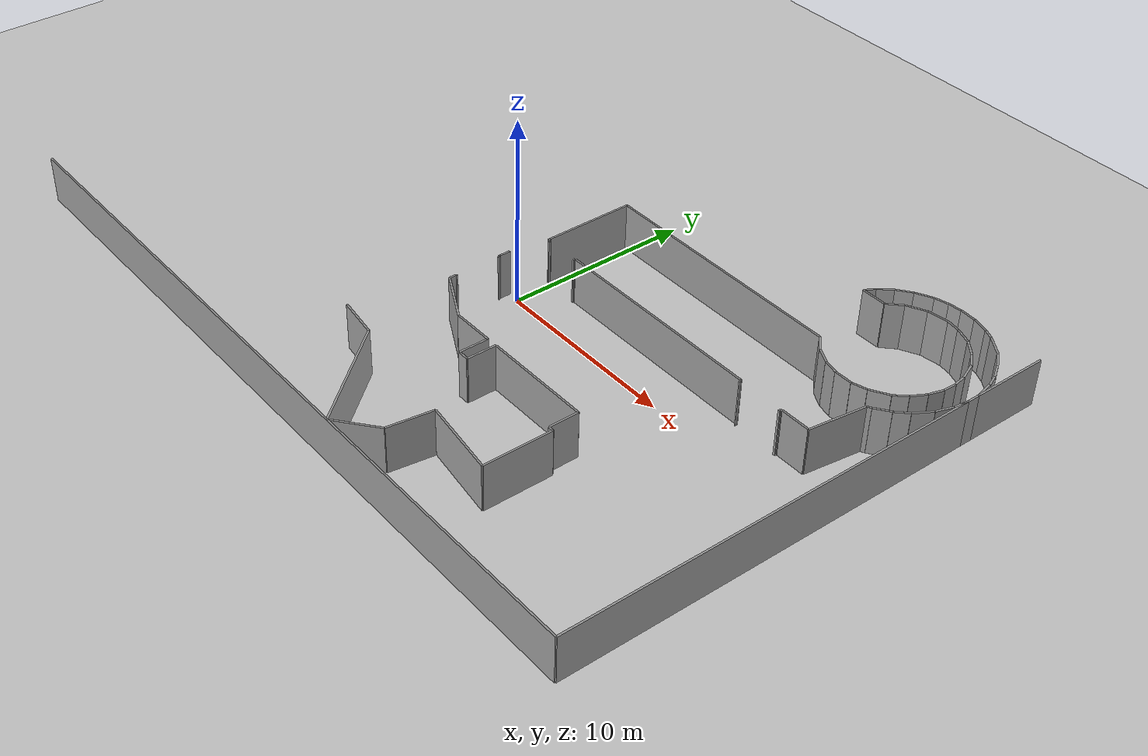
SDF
<sdf version="1.6">
 <world name="default">
  <model name="ground_plane">
   <static>1</static>
   <link name="link">
    <collision name="collision">
     <geometry><plane><normal>0 0 1</normal><size>100 100</size></plane></geometry>
     <surface><friction><ode><mu>100</mu><mu2>50</mu2></ode></friction></surface>
    </collision>
    <visual name="visual">
     <cast_shadows>0</cast_shadows>
     <geometry><plane><normal>0 0 1</normal><size>100 100</size></plane></geometry>
     <material>
      <script><uri>file://media/materials/scripts/gazebo.material</uri><name>Gazebo/Grey</name></script>
     </material>
    </visual>
   </link>
  </model>
  <model name="0510030941_A_40_1_105">
   <static>1</static>
   <link name="Wall_50">
    <collision name="Wall_50_Collision">
     <geometry><box><size>0.626453063662 0.1 2.5</size></box></geometry>
     <pose>0.313226531831 0 1.25 0 0 0</pose>
    </collision>
    <visual name="Wall_50_Visual">
     <pose>0.313226531831 0 1.25 0 0 0</pose>
     <geometry><box><size>0.626453063662 0.1 2.5</size></box></geometry>
     <material>
      <script><uri>file://media/materials/scripts/gazebo.material</uri><name>Gazebo/Grey</name></script>
      <ambient>1 1 1 1</ambient>
     </material>
    </visual>
    <pose>20.7602302034 -13.5093313684 0 0 0 -1.57079632679</pose>
   </link>
   <link name="Wall_51">
    <collision name="Wall_51_Collision">
     <geometry><box><size>0.0592024189143 0.1 2.5</size></box></geometry>
     <pose>0.0296012094571 0 1.25 0 0 0</pose>
    </collision>
    <visual name="Wall_51_Visual">
     <pose>0.0296012094571 0 1.25 0 0 0</pose>
     <geometry><box><size>0.0592024189143 0.1 2.5</size></box></geometry>
     <material>
      <script><uri>file://media/materials/scripts/gazebo.material</uri><name>Gazebo/Grey</name></script>
      <ambient>1 1 1 1</ambient>
     </material>
    </visual>
    <pose>20.7602302034 -14.1357844321 0 0 0 0.0</pose>
   </link>
   <link name="Wall_52">
    <collision name="Wall_52_Collision">
     <geometry><box><size>0.0915985923545 0.1 2.5</size></box></geometry>
     <pose>0.0457992961773 0 1.25 0 0 0</pose>
    </collision>
    <visual name="Wall_52_Visual">
     <pose>0.0457992961773 0 1.25 0 0 0</pose>
     <geometry><box><size>0.0915985923545 0.1 2.5</size></box></geometry>
     <material>
      <script><uri>file://media/materials/scripts/gazebo.material</uri><name>Gazebo/Grey</name></script>
      <ambient>1 1 1 1</ambient>
     </material>
    </visual>
    <pose>20.8194326223 -14.1357844321 0 0 0 -1.57079632679</pose>
   </link>
   <link name="Wall_53">
    <collision name="Wall_53_Collision">
     <geometry><box><size>0.0825784813182 0.1 2.5</size></box></geometry>
     <pose>0.0412892406591 0 1.25 0 0 0</pose>
    </collision>
    <visual name="Wall_53_Visual">
     <pose>0.0412892406591 0 1.25 0 0 0</pose>
     <geometry><box><size>0.0825784813182 0.1 2.5</size></box></geometry>
     <material>
      <script><uri>file://media/materials/scripts/gazebo.material</uri><name>Gazebo/Grey</name></script>
      <ambient>1 1 1 1</ambient>
     </material>
    </visual>
    <pose>20.8194326223 -16.6238105523 0 0 0 -1.57079632679</pose>
   </link>
   <link name="Wall_54">
    <collision name="Wall_54_Collision">
     <geometry><box><size>0.0377320137715 0.1 2.5</size></box></geometry>
     <pose>0.0188660068858 0 1.25 0 0 0</pose>
    </collision>
    <visual name="Wall_54_Visual">
     <pose>0.0188660068858 0 1.25 0 0 0</pose>
     <geometry><box><size>0.0377320137715 0.1 2.5</size></box></geometry>
     <material>
      <script><uri>file://media/materials/scripts/gazebo.material</uri><name>Gazebo/Grey</name></script>
      <ambient>1 1 1 1</ambient>
     </material>
    </visual>
    <pose>20.8194326223 -16.7063890336 0 0 0 3.14159265359</pose>
   </link>
   <link name="Wall_55">
    <collision name="Wall_55_Collision">
     <geometry><box><size>0.338698817222 0.1 2.5</size></box></geometry>
     <pose>0.169349408611 0 1.25 0 0 0</pose>
    </collision>
    <visual name="Wall_55_Visual">
     <pose>0.169349408611 0 1.25 0 0 0</pose>
     <geometry><box><size>0.338698817222 0.1 2.5</size></box></geometry>
     <material>
      <script><uri>file://media/materials/scripts/gazebo.material</uri><name>Gazebo/Grey</name></script>
      <ambient>1 1 1 1</ambient>
     </material>
    </visual>
    <pose>20.7817006085 -16.7063890336 0 0 0 -1.57079632679</pose>
   </link>
   <link name="Wall_56">
    <collision name="Wall_56_Collision">
     <geometry><box><size>2.94811483346 0.1 2.5</size></box></geometry>
     <pose>1.47405741673 0 1.25 0 0 0</pose>
    </collision>
    <visual name="Wall_56_Visual">
     <pose>1.47405741673 0 1.25 0 0 0</pose>
     <geometry><box><size>2.94811483346 0.1 2.5</size></box></geometry>
     <material>
      <script><uri>file://media/materials/scripts/gazebo.material</uri><name>Gazebo/Grey</name></script>
      <ambient>1 1 1 1</ambient>
     </material>
    </visual>
    <pose>20.7817006085 -17.0450878508 0 0 0 -0.485214517275</pose>
   </link>
   <link name="Wall_57">
    <collision name="Wall_57_Collision">
     <geometry><box><size>2.21349283084 0.1 2.5</size></box></geometry>
     <pose>1.10674641542 0 1.25 0 0 0</pose>
    </collision>
    <visual name="Wall_57_Visual">
     <pose>1.10674641542 0 1.25 0 0 0</pose>
     <geometry><box><size>2.21349283084 0.1 2.5</size></box></geometry>
     <material>
      <script><uri>file://media/materials/scripts/gazebo.material</uri><name>Gazebo/Grey</name></script>
      <ambient>1 1 1 1</ambient>
     </material>
    </visual>
    <pose>23.3895290486 -18.4200830867 0 0 0 0.0027549720807</pose>
   </link>
   <link name="Wall_58">
    <collision name="Wall_58_Collision">
     <geometry><box><size>1.56568800579 0.1 2.5</size></box></geometry>
     <pose>0.782844002897 0 1.25 0 0 0</pose>
    </collision>
    <visual name="Wall_58_Visual">
     <pose>0.782844002897 0 1.25 0 0 0</pose>
     <geometry><box><size>1.56568800579 0.1 2.5</size></box></geometry>
     <material>
      <script><uri>file://media/materials/scripts/gazebo.material</uri><name>Gazebo/Grey</name></script>
      <ambient>1 1 1 1</ambient>
     </material>
    </visual>
    <pose>25.6030134793 -18.4139849834 0 0 0 -1.57079632679</pose>
   </link>
   <link name="Wall_59">
    <collision name="Wall_59_Collision">
     <geometry><box><size>0.586561304994 0.1 2.5</size></box></geometry>
     <pose>0.293280652497 0 1.25 0 0 0</pose>
    </collision>
    <visual name="Wall_59_Visual">
     <pose>0.293280652497 0 1.25 0 0 0</pose>
     <geometry><box><size>0.586561304994 0.1 2.5</size></box></geometry>
     <material>
      <script><uri>file://media/materials/scripts/gazebo.material</uri><name>Gazebo/Grey</name></script>
      <ambient>1 1 1 1</ambient>
     </material>
    </visual>
    <pose>25.6030134793 -19.9796729892 0 0 0 0.0</pose>
   </link>
   <link name="Wall_60">
    <collision name="Wall_60_Collision">
     <geometry><box><size>1.57292950339 0.1 2.5</size></box></geometry>
     <pose>0.786464751693 0 1.25 0 0 0</pose>
    </collision>
    <visual name="Wall_60_Visual">
     <pose>0.786464751693 0 1.25 0 0 0</pose>
     <geometry><box><size>1.57292950339 0.1 2.5</size></box></geometry>
     <material>
      <script><uri>file://media/materials/scripts/gazebo.material</uri><name>Gazebo/Grey</name></script>
      <ambient>1 1 1 1</ambient>
     </material>
    </visual>
    <pose>26.1895747843 -19.9796729892 0 0 0 1.57079632679</pose>
   </link>
   <link name="Wall_61">
    <collision name="Wall_61_Collision">
     <geometry><box><size>5.82470494073 0.1 2.5</size></box></geometry>
     <pose>2.91235247037 0 1.25 0 0 0</pose>
    </collision>
    <visual name="Wall_61_Visual">
     <pose>2.91235247037 0 1.25 0 0 0</pose>
     <geometry><box><size>5.82470494073 0.1 2.5</size></box></geometry>
     <material>
      <script><uri>file://media/materials/scripts/gazebo.material</uri><name>Gazebo/Grey</name></script>
      <ambient>1 1 1 1</ambient>
     </material>
    </visual>
    <pose>26.1895747843 -18.4067434858 0 0 0 0.0</pose>
   </link>
   <link name="Wall_62">
    <collision name="Wall_62_Collision">
     <geometry><box><size>1.58652319185 0.1 2.5</size></box></geometry>
     <pose>0.793261595924 0 1.25 0 0 0</pose>
    </collision>
    <visual name="Wall_62_Visual">
     <pose>0.793261595924 0 1.25 0 0 0</pose>
     <geometry><box><size>1.58652319185 0.1 2.5</size></box></geometry>
     <material>
      <script><uri>file://media/materials/scripts/gazebo.material</uri><name>Gazebo/Grey</name></script>
      <ambient>1 1 1 1</ambient>
     </material>
    </visual>
    <pose>32.0142797251 -18.4067434858 0 0 0 -1.57079632679</pose>
   </link>
   <link name="Wall_63">
    <collision name="Wall_63_Collision">
     <geometry><box><size>0.26171026387 0.1 2.5</size></box></geometry>
     <pose>0.130855131935 0 1.25 0 0 0</pose>
    </collision>
    <visual name="Wall_63_Visual">
     <pose>0.130855131935 0 1.25 0 0 0</pose>
     <geometry><box><size>0.26171026387 0.1 2.5</size></box></geometry>
     <material>
      <script><uri>file://media/materials/scripts/gazebo.material</uri><name>Gazebo/Grey</name></script>
      <ambient>1 1 1 1</ambient>
     </material>
    </visual>
    <pose>32.0142797251 -19.9932666777 0 0 0 0.0</pose>
   </link>
   <link name="Wall_64">
    <collision name="Wall_64_Collision">
     <geometry><box><size>3.68261913534 0.1 2.5</size></box></geometry>
     <pose>1.84130956767 0 1.25 0 0 0</pose>
    </collision>
    <visual name="Wall_64_Visual">
     <pose>1.84130956767 0 1.25 0 0 0</pose>
     <geometry><box><size>3.68261913534 0.1 2.5</size></box></geometry>
     <material>
      <script><uri>file://media/materials/scripts/gazebo.material</uri><name>Gazebo/Grey</name></script>
      <ambient>1 1 1 1</ambient>
     </material>
    </visual>
    <pose>32.2759899889 -19.9932666777 0 0 0 -1.57079632679</pose>
   </link>
   <link name="Wall_65">
    <collision name="Wall_65_Collision">
     <geometry><box><size>4.09814743715 0.1 2.5</size></box></geometry>
     <pose>2.04907371857 0 1.25 0 0 0</pose>
    </collision>
    <visual name="Wall_65_Visual">
     <pose>2.04907371857 0 1.25 0 0 0</pose>
     <geometry><box><size>4.09814743715 0.1 2.5</size></box></geometry>
     <material>
      <script><uri>file://media/materials/scripts/gazebo.material</uri><name>Gazebo/Grey</name></script>
      <ambient>1 1 1 1</ambient>
     </material>
    </visual>
    <pose>32.2759899889 -23.675885813 0 0 0 3.00792465708</pose>
   </link>
   <link name="Wall_66">
    <collision name="Wall_66_Collision">
     <geometry><box><size>2.41794761321 0.1 2.5</size></box></geometry>
     <pose>1.20897380661 0 1.25 0 0 0</pose>
    </collision>
    <visual name="Wall_66_Visual">
     <pose>1.20897380661 0 1.25 0 0 0</pose>
     <geometry><box><size>2.41794761321 0.1 2.5</size></box></geometry>
     <material>
      <script><uri>file://media/materials/scripts/gazebo.material</uri><name>Gazebo/Grey</name></script>
      <ambient>1 1 1 1</ambient>
     </material>
    </visual>
    <pose>28.2143991463 -23.129724442 0 0 0 -1.71048650278</pose>
   </link>
   <link name="Wall_67">
    <collision name="Wall_67_Collision">
     <geometry><box><size>2.52159958981 0.1 2.5</size></box></geometry>
     <pose>1.26079979491 0 1.25 0 0 0</pose>
    </collision>
    <visual name="Wall_67_Visual">
     <pose>1.26079979491 0 1.25 0 0 0</pose>
     <geometry><box><size>2.52159958981 0.1 2.5</size></box></geometry>
     <material>
      <script><uri>file://media/materials/scripts/gazebo.material</uri><name>Gazebo/Grey</name></script>
      <ambient>1 1 1 1</ambient>
     </material>
    </visual>
    <pose>27.8777330301 -25.5241192687 0 0 0 -2.44340965199</pose>
   </link>
   <link name="Wall_68">
    <collision name="Wall_68_Collision">
     <geometry><box><size>6.33365837987 0.1 2.5</size></box></geometry>
     <pose>3.16682918993 0 1.25 0 0 0</pose>
    </collision>
    <visual name="Wall_68_Visual">
     <pose>3.16682918993 0 1.25 0 0 0</pose>
     <geometry><box><size>6.33365837987 0.1 2.5</size></box></geometry>
     <material>
      <script><uri>file://media/materials/scripts/gazebo.material</uri><name>Gazebo/Grey</name></script>
      <ambient>1 1 1 1</ambient>
     </material>
    </visual>
    <pose>25.9461588302 -27.1450713351 0 0 0 2.26956673565</pose>
   </link>
   <link name="Wall_69">
    <collision name="Wall_69_Collision">
     <geometry><box><size>2.24384510144 0.1 2.5</size></box></geometry>
     <pose>1.12192255072 0 1.25 0 0 0</pose>
    </collision>
    <visual name="Wall_69_Visual">
     <pose>1.12192255072 0 1.25 0 0 0</pose>
     <geometry><box><size>2.24384510144 0.1 2.5</size></box></geometry>
     <material>
      <script><uri>file://media/materials/scripts/gazebo.material</uri><name>Gazebo/Grey</name></script>
      <ambient>1 1 1 1</ambient>
     </material>
    </visual>
    <pose>21.8718636058 -22.2958088245 0 0 0 3.00774282889</pose>
   </link>
   <link name="Wall_95">
    <collision name="Wall_95_Collision">
     <geometry><box><size>4.89233036474 0.1 2.5</size></box></geometry>
     <pose>2.44616518237 0 1.25 0 0 0</pose>
    </collision>
    <visual name="Wall_95_Visual">
     <pose>2.44616518237 0 1.25 0 0 0</pose>
     <geometry><box><size>4.89233036474 0.1 2.5</size></box></geometry>
     <material>
      <script><uri>file://media/materials/scripts/gazebo.material</uri><name>Gazebo/Grey</name></script>
      <ambient>1 1 1 1</ambient>
     </material>
    </visual>
    <pose>21.1092195698 -11.4095511542 0 0 0 1.57079632679</pose>
   </link>
   <link name="Wall_96">
    <collision name="Wall_96_Collision">
     <geometry><box><size>13.3570058313 0.1 2.5</size></box></geometry>
     <pose>6.67850291566 0 1.25 0 0 0</pose>
    </collision>
    <visual name="Wall_96_Visual">
     <pose>6.67850291566 0 1.25 0 0 0</pose>
     <geometry><box><size>13.3570058313 0.1 2.5</size></box></geometry>
     <material>
      <script><uri>file://media/materials/scripts/gazebo.material</uri><name>Gazebo/Grey</name></script>
      <ambient>1 1 1 1</ambient>
     </material>
    </visual>
    <pose>21.1092195698 -6.51722078945 0 0 0 0.0</pose>
   </link>
   <link name="Wall_97">
    <collision name="Wall_97_Collision">
     <geometry><box><size>0.912531288236 0.1 2.5</size></box></geometry>
     <pose>0.456265644118 0 1.25 0 0 0</pose>
    </collision>
    <visual name="Wall_97_Visual">
     <pose>0.456265644118 0 1.25 0 0 0</pose>
     <geometry><box><size>0.912531288236 0.1 2.5</size></box></geometry>
     <material>
      <script><uri>file://media/materials/scripts/gazebo.material</uri><name>Gazebo/Grey</name></script>
      <ambient>1 1 1 1</ambient>
     </material>
    </visual>
    <pose>34.4662254011 -6.51722078945 0 0 0 -0.783232386118</pose>
   </link>
   <link name="Wall_98">
    <collision name="Wall_98_Collision">
     <geometry><box><size>0.893236226327 0.1 2.5</size></box></geometry>
     <pose>0.446618113164 0 1.25 0 0 0</pose>
    </collision>
    <visual name="Wall_98_Visual">
     <pose>0.446618113164 0 1.25 0 0 0</pose>
     <geometry><box><size>0.893236226327 0.1 2.5</size></box></geometry>
     <material>
      <script><uri>file://media/materials/scripts/gazebo.material</uri><name>Gazebo/Grey</name></script>
      <ambient>1 1 1 1</ambient>
     </material>
    </visual>
    <pose>35.1128784318 -7.1610788561 0 0 0 -0.481967335478</pose>
   </link>
   <link name="Wall_99">
    <collision name="Wall_99_Collision">
     <geometry><box><size>0.770025981696 0.1 2.5</size></box></geometry>
     <pose>0.385012990848 0 1.25 0 0 0</pose>
    </collision>
    <visual name="Wall_99_Visual">
     <pose>0.385012990848 0 1.25 0 0 0</pose>
     <geometry><box><size>0.770025981696 0.1 2.5</size></box></geometry>
     <material>
      <script><uri>file://media/materials/scripts/gazebo.material</uri><name>Gazebo/Grey</name></script>
      <ambient>1 1 1 1</ambient>
     </material>
    </visual>
    <pose>35.9043614143 -7.57511465705 0 0 0 -0.238176046972</pose>
   </link>
   <link name="Wall_100">
    <collision name="Wall_100_Collision">
     <geometry><box><size>0.943935563376 0.1 2.5</size></box></geometry>
     <pose>0.471967781688 0 1.25 0 0 0</pose>
    </collision>
    <visual name="Wall_100_Visual">
     <pose>0.471967781688 0 1.25 0 0 0</pose>
     <geometry><box><size>0.943935563376 0.1 2.5</size></box></geometry>
     <material>
      <script><uri>file://media/materials/scripts/gazebo.material</uri><name>Gazebo/Grey</name></script>
      <ambient>1 1 1 1</ambient>
     </material>
    </visual>
    <pose>36.6526494988 -7.75678731595 0 0 0 0.0</pose>
   </link>
   <link name="Wall_101">
    <collision name="Wall_101_Collision">
     <geometry><box><size>0.788757236741 0.1 2.5</size></box></geometry>
     <pose>0.394378618371 0 1.25 0 0 0</pose>
    </collision>
    <visual name="Wall_101_Visual">
     <pose>0.394378618371 0 1.25 0 0 0</pose>
     <geometry><box><size>0.788757236741 0.1 2.5</size></box></geometry>
     <material>
      <script><uri>file://media/materials/scripts/gazebo.material</uri><name>Gazebo/Grey</name></script>
      <ambient>1 1 1 1</ambient>
     </material>
    </visual>
    <pose>37.5965850622 -7.75678731595 0 0 0 0.289605487563</pose>
   </link>
   <link name="Wall_102">
    <collision name="Wall_102_Collision">
     <geometry><box><size>1.04555607586 0.1 2.5</size></box></geometry>
     <pose>0.522778037929 0 1.25 0 0 0</pose>
    </collision>
    <visual name="Wall_102_Visual">
     <pose>0.522778037929 0 1.25 0 0 0</pose>
     <geometry><box><size>1.04555607586 0.1 2.5</size></box></geometry>
     <material>
      <script><uri>file://media/materials/scripts/gazebo.material</uri><name>Gazebo/Grey</name></script>
      <ambient>1 1 1 1</ambient>
     </material>
    </visual>
    <pose>38.3524957758 -7.53153862767 0 0 0 0.542086582164</pose>
   </link>
   <link name="Wall_103">
    <collision name="Wall_103_Collision">
     <geometry><box><size>0.750552208039 0.1 2.5</size></box></geometry>
     <pose>0.37527610402 0 1.25 0 0 0</pose>
    </collision>
    <visual name="Wall_103_Visual">
     <pose>0.37527610402 0 1.25 0 0 0</pose>
     <geometry><box><size>0.750552208039 0.1 2.5</size></box></geometry>
     <material>
      <script><uri>file://media/materials/scripts/gazebo.material</uri><name>Gazebo/Grey</name></script>
      <ambient>1 1 1 1</ambient>
     </material>
    </visual>
    <pose>39.2481546886 -6.99211057894 0 0 0 0.831614929538</pose>
   </link>
   <link name="Wall_104">
    <collision name="Wall_104_Collision">
     <geometry><box><size>0.831711356591 0.1 2.5</size></box></geometry>
     <pose>0.415855678295 0 1.25 0 0 0</pose>
    </collision>
    <visual name="Wall_104_Visual">
     <pose>0.415855678295 0 1.25 0 0 0</pose>
     <geometry><box><size>0.831711356591 0.1 2.5</size></box></geometry>
     <material>
      <script><uri>file://media/materials/scripts/gazebo.material</uri><name>Gazebo/Grey</name></script>
      <ambient>1 1 1 1</ambient>
     </material>
    </visual>
    <pose>39.7537890819 -6.43743727212 0 0 0 1.06881639612</pose>
   </link>
   <link name="Wall_105">
    <collision name="Wall_105_Collision">
     <geometry><box><size>0.802053086045 0.1 2.5</size></box></geometry>
     <pose>0.401026543023 0 1.25 0 0 0</pose>
    </collision>
    <visual name="Wall_105_Visual">
     <pose>0.401026543023 0 1.25 0 0 0</pose>
     <geometry><box><size>0.802053086045 0.1 2.5</size></box></geometry>
     <material>
      <script><uri>file://media/materials/scripts/gazebo.material</uri><name>Gazebo/Grey</name></script>
      <ambient>1 1 1 1</ambient>
     </material>
    </visual>
    <pose>40.1539771067 -5.70833280398 0 0 0 1.28662206174</pose>
   </link>
   <link name="Wall_106">
    <collision name="Wall_106_Collision">
     <geometry><box><size>0.683201974276 0.1 2.5</size></box></geometry>
     <pose>0.341600987138 0 1.25 0 0 0</pose>
    </collision>
    <visual name="Wall_106_Visual">
     <pose>0.341600987138 0 1.25 0 0 0</pose>
     <geometry><box><size>0.683201974276 0.1 2.5</size></box></geometry>
     <material>
      <script><uri>file://media/materials/scripts/gazebo.material</uri><name>Gazebo/Grey</name></script>
      <ambient>1 1 1 1</ambient>
     </material>
    </visual>
    <pose>40.3788446635 -4.93844727046 0 0 0 1.53917895955</pose>
   </link>
   <link name="Wall_107">
    <collision name="Wall_107_Collision">
     <geometry><box><size>0.663721745365 0.1 2.5</size></box></geometry>
     <pose>0.331860872683 0 1.25 0 0 0</pose>
    </collision>
    <visual name="Wall_107_Visual">
     <pose>0.331860872683 0 1.25 0 0 0</pose>
     <geometry><box><size>0.663721745365 0.1 2.5</size></box></geometry>
     <material>
      <script><uri>file://media/materials/scripts/gazebo.material</uri><name>Gazebo/Grey</name></script>
      <ambient>1 1 1 1</ambient>
     </material>
    </visual>
    <pose>40.4004421125 -4.25558675187 0 0 0 1.73034370336</pose>
   </link>
   <link name="Wall_108">
    <collision name="Wall_108_Collision">
     <geometry><box><size>0.980344390581 0.1 2.5</size></box></geometry>
     <pose>0.490172195291 0 1.25 0 0 0</pose>
    </collision>
    <visual name="Wall_108_Visual">
     <pose>0.490172195291 0 1.25 0 0 0</pose>
     <geometry><box><size>0.980344390581 0.1 2.5</size></box></geometry>
     <material>
      <script><uri>file://media/materials/scripts/gazebo.material</uri><name>Gazebo/Grey</name></script>
      <ambient>1 1 1 1</ambient>
     </material>
    </visual>
    <pose>40.294995744 -3.60029474166 0 0 0 1.95327598976</pose>
   </link>
   <link name="Wall_109">
    <collision name="Wall_109_Collision">
     <geometry><box><size>0.766131902726 0.1 2.5</size></box></geometry>
     <pose>0.383065951363 0 1.25 0 0 0</pose>
    </collision>
    <visual name="Wall_109_Visual">
     <pose>0.383065951363 0 1.25 0 0 0</pose>
     <geometry><box><size>0.766131902726 0.1 2.5</size></box></geometry>
     <material>
      <script><uri>file://media/materials/scripts/gazebo.material</uri><name>Gazebo/Grey</name></script>
      <ambient>1 1 1 1</ambient>
     </material>
    </visual>
    <pose>39.9291095499 -2.6907880528 0 0 0 2.28060969143</pose>
   </link>
   <link name="Wall_110">
    <collision name="Wall_110_Collision">
     <geometry><box><size>0.930459378253 0.1 2.5</size></box></geometry>
     <pose>0.465229689126 0 1.25 0 0 0</pose>
    </collision>
    <visual name="Wall_110_Visual">
     <pose>0.465229689126 0 1.25 0 0 0</pose>
     <geometry><box><size>0.930459378253 0.1 2.5</size></box></geometry>
     <material>
      <script><uri>file://media/materials/scripts/gazebo.material</uri><name>Gazebo/Grey</name></script>
      <ambient>1 1 1 1</ambient>
     </material>
    </visual>
    <pose>39.4298273475 -2.10968963195 0 0 0 2.46706494917</pose>
   </link>
   <link name="Wall_111">
    <collision name="Wall_111_Collision">
     <geometry><box><size>0.915048879344 0.1 2.5</size></box></geometry>
     <pose>0.457524439672 0 1.25 0 0 0</pose>
    </collision>
    <visual name="Wall_111_Visual">
     <pose>0.457524439672 0 1.25 0 0 0</pose>
     <geometry><box><size>0.915048879344 0.1 2.5</size></box></geometry>
     <material>
      <script><uri>file://media/materials/scripts/gazebo.material</uri><name>Gazebo/Grey</name></script>
      <ambient>1 1 1 1</ambient>
     </material>
    </visual>
    <pose>38.7031367119 -1.52859121111 0 0 0 2.78919194494</pose>
   </link>
   <link name="Wall_112">
    <collision name="Wall_112_Collision">
     <geometry><box><size>0.69063963807 0.1 2.5</size></box></geometry>
     <pose>0.345319819035 0 1.25 0 0 0</pose>
    </collision>
    <visual name="Wall_112_Visual">
     <pose>0.345319819035 0 1.25 0 0 0</pose>
     <geometry><box><size>0.69063963807 0.1 2.5</size></box></geometry>
     <material>
      <script><uri>file://media/materials/scripts/gazebo.material</uri><name>Gazebo/Grey</name></script>
      <ambient>1 1 1 1</ambient>
     </material>
    </visual>
    <pose>37.8443205061 -1.21276028102 0 0 0 2.98533505018</pose>
   </link>
   <link name="Wall_113">
    <collision name="Wall_113_Collision">
     <geometry><box><size>1.10220111599 0.1 2.5</size></box></geometry>
     <pose>0.551100557997 0 1.25 0 0 0</pose>
    </collision>
    <visual name="Wall_113_Visual">
     <pose>0.551100557997 0 1.25 0 0 0</pose>
     <geometry><box><size>1.10220111599 0.1 2.5</size></box></geometry>
     <material>
      <script><uri>file://media/materials/scripts/gazebo.material</uri><name>Gazebo/Grey</name></script>
      <ambient>1 1 1 1</ambient>
     </material>
    </visual>
    <pose>37.1620952066 -1.10528121149 0 0 0 -3.00934579498</pose>
   </link>
   <link name="Wall_114">
    <collision name="Wall_114_Collision">
     <geometry><box><size>1.07599460217 0.1 2.5</size></box></geometry>
     <pose>0.537997301083 0 1.25 0 0 0</pose>
    </collision>
    <visual name="Wall_114_Visual">
     <pose>0.537997301083 0 1.25 0 0 0</pose>
     <geometry><box><size>1.07599460217 0.1 2.5</size></box></geometry>
     <material>
      <script><uri>file://media/materials/scripts/gazebo.material</uri><name>Gazebo/Grey</name></script>
      <ambient>1 1 1 1</ambient>
     </material>
    </visual>
    <pose>36.0695183769 -1.25061933861 0 0 0 -2.66611690108</pose>
   </link>
   <link name="Wall_115">
    <collision name="Wall_115_Collision">
     <geometry><box><size>0.921782007573 0.1 2.5</size></box></geometry>
     <pose>0.460891003787 0 1.25 0 0 0</pose>
    </collision>
    <visual name="Wall_115_Visual">
     <pose>0.460891003787 0 1.25 0 0 0</pose>
     <geometry><box><size>0.921782007573 0.1 2.5</size></box></geometry>
     <material>
      <script><uri>file://media/materials/scripts/gazebo.material</uri><name>Gazebo/Grey</name></script>
      <ambient>1 1 1 1</ambient>
     </material>
    </visual>
    <pose>35.1128784318 -1.74316821872 0 0 0 -2.3560970338</pose>
   </link>
   <link name="Wall_116">
    <collision name="Wall_116_Collision">
     <geometry><box><size>1.32506701561 0.1 2.5</size></box></geometry>
     <pose>0.662533507807 0 1.25 0 0 0</pose>
    </collision>
    <visual name="Wall_116_Visual">
     <pose>0.662533507807 0 1.25 0 0 0</pose>
     <geometry><box><size>1.32506701561 0.1 2.5</size></box></geometry>
     <material>
      <script><uri>file://media/materials/scripts/gazebo.material</uri><name>Gazebo/Grey</name></script>
      <ambient>1 1 1 1</ambient>
     </material>
    </visual>
    <pose>34.4611436484 -2.39503004586 0 0 0 3.14159265359</pose>
   </link>
   <link name="Wall_117">
    <collision name="Wall_117_Collision">
     <geometry><box><size>0.60228552909 0.1 2.5</size></box></geometry>
     <pose>0.301142764545 0 1.25 0 0 0</pose>
    </collision>
    <visual name="Wall_117_Visual">
     <pose>0.301142764545 0 1.25 0 0 0</pose>
     <geometry><box><size>0.60228552909 0.1 2.5</size></box></geometry>
     <material>
      <script><uri>file://media/materials/scripts/gazebo.material</uri><name>Gazebo/Grey</name></script>
      <ambient>1 1 1 1</ambient>
     </material>
    </visual>
    <pose>33.1360766328 -2.39503004586 0 0 0 1.06666857725</pose>
   </link>
   <link name="Wall_118">
    <collision name="Wall_118_Collision">
     <geometry><box><size>0.859635548186 0.1 2.5</size></box></geometry>
     <pose>0.429817774093 0 1.25 0 0 0</pose>
    </collision>
    <visual name="Wall_118_Visual">
     <pose>0.429817774093 0 1.25 0 0 0</pose>
     <geometry><box><size>0.859635548186 0.1 2.5</size></box></geometry>
     <material>
      <script><uri>file://media/materials/scripts/gazebo.material</uri><name>Gazebo/Grey</name></script>
      <ambient>1 1 1 1</ambient>
     </material>
    </visual>
    <pose>33.4270069747 -1.86767115978 0 0 0 0.855052737126</pose>
   </link>
   <link name="Wall_119">
    <collision name="Wall_119_Collision">
     <geometry><box><size>0.883201053007 0.1 2.5</size></box></geometry>
     <pose>0.441600526504 0 1.25 0 0 0</pose>
    </collision>
    <visual name="Wall_119_Visual">
     <pose>0.441600526504 0 1.25 0 0 0</pose>
     <geometry><box><size>0.883201053007 0.1 2.5</size></box></geometry>
     <material>
      <script><uri>file://media/materials/scripts/gazebo.material</uri><name>Gazebo/Grey</name></script>
      <ambient>1 1 1 1</ambient>
     </material>
    </visual>
    <pose>33.991081524 -1.21898542807 0 0 0 0.653397787802</pose>
   </link>
   <link name="Wall_120">
    <collision name="Wall_120_Collision">
     <geometry><box><size>0.963043253845 0.1 2.5</size></box></geometry>
     <pose>0.481521626923 0 1.25 0 0 0</pose>
    </collision>
    <visual name="Wall_120_Visual">
     <pose>0.481521626923 0 1.25 0 0 0</pose>
     <geometry><box><size>0.963043253845 0.1 2.5</size></box></geometry>
     <material>
      <script><uri>file://media/materials/scripts/gazebo.material</uri><name>Gazebo/Grey</name></script>
      <ambient>1 1 1 1</ambient>
     </material>
    </visual>
    <pose>34.6923633961 -0.682098255688 0 0 0 0.469547245568</pose>
   </link>
   <link name="Wall_121">
    <collision name="Wall_121_Collision">
     <geometry><box><size>0.741728809472 0.1 2.5</size></box></geometry>
     <pose>0.370864404736 0 1.25 0 0 0</pose>
    </collision>
    <visual name="Wall_121_Visual">
     <pose>0.370864404736 0 1.25 0 0 0</pose>
     <geometry><box><size>0.741728809472 0.1 2.5</size></box></geometry>
     <material>
      <script><uri>file://media/materials/scripts/gazebo.material</uri><name>Gazebo/Grey</name></script>
      <ambient>1 1 1 1</ambient>
     </material>
    </visual>
    <pose>35.5511796018 -0.246337961963 0 0 0 0.240741400351</pose>
   </link>
   <link name="Wall_122">
    <collision name="Wall_122_Collision">
     <geometry><box><size>0.685755519048 0.1 2.5</size></box></geometry>
     <pose>0.342877759524 0 1.25 0 0 0</pose>
    </collision>
    <visual name="Wall_122_Visual">
     <pose>0.342877759524 0 1.25 0 0 0</pose>
     <geometry><box><size>0.685755519048 0.1 2.5</size></box></geometry>
     <material>
      <script><uri>file://media/materials/scripts/gazebo.material</uri><name>Gazebo/Grey</name></script>
      <ambient>1 1 1 1</ambient>
     </material>
    </visual>
    <pose>36.2715180466 -0.0694929681247 0 0 0 0.101512070316</pose>
   </link>
   <link name="Wall_123">
    <collision name="Wall_123_Collision">
     <geometry><box><size>0.827921310897 0.1 2.5</size></box></geometry>
     <pose>0.413960655448 0 1.25 0 0 0</pose>
    </collision>
    <visual name="Wall_123_Visual">
     <pose>0.413960655448 0 1.25 0 0 0</pose>
     <geometry><box><size>0.827921310897 0.1 2.5</size></box></geometry>
     <material>
      <script><uri>file://media/materials/scripts/gazebo.material</uri><name>Gazebo/Grey</name></script>
      <ambient>1 1 1 1</ambient>
     </material>
    </visual>
    <pose>36.9537433461 -0.0 0 0 0 -0.0457437966976</pose>
   </link>
   <link name="Wall_124">
    <collision name="Wall_124_Collision">
     <geometry><box><size>0.864358369557 0.1 2.5</size></box></geometry>
     <pose>0.432179184778 0 1.25 0 0 0</pose>
    </collision>
    <visual name="Wall_124_Visual">
     <pose>0.432179184778 0 1.25 0 0 0</pose>
     <geometry><box><size>0.864358369557 0.1 2.5</size></box></geometry>
     <material>
      <script><uri>file://media/materials/scripts/gazebo.material</uri><name>Gazebo/Grey</name></script>
      <ambient>1 1 1 1</ambient>
     </material>
    </visual>
    <pose>37.7807985974 -0.037859057589 0 0 0 -0.257099281669</pose>
   </link>
   <link name="Wall_125">
    <collision name="Wall_125_Collision">
     <geometry><box><size>0.571032833131 0.1 2.5</size></box></geometry>
     <pose>0.285516416566 0 1.25 0 0 0</pose>
    </collision>
    <visual name="Wall_125_Visual">
     <pose>0.285516416566 0 1.25 0 0 0</pose>
     <geometry><box><size>0.571032833131 0.1 2.5</size></box></geometry>
     <material>
      <script><uri>file://media/materials/scripts/gazebo.material</uri><name>Gazebo/Grey</name></script>
      <ambient>1 1 1 1</ambient>
     </material>
    </visual>
    <pose>38.616746916 -0.257644861713 0 0 0 -0.422245271133</pose>
   </link>
   <link name="Wall_126">
    <collision name="Wall_126_Collision">
     <geometry><box><size>1.13445692999 0.1 2.5</size></box></geometry>
     <pose>0.567228464996 0 1.25 0 0 0</pose>
    </collision>
    <visual name="Wall_126_Visual">
     <pose>0.567228464996 0 1.25 0 0 0</pose>
     <geometry><box><size>1.13445692999 0.1 2.5</size></box></geometry>
     <material>
      <script><uri>file://media/materials/scripts/gazebo.material</uri><name>Gazebo/Grey</name></script>
      <ambient>1 1 1 1</ambient>
     </material>
    </visual>
    <pose>39.1376265674 -0.491659573387 0 0 0 -0.599991840829</pose>
   </link>
   <link name="Wall_127">
    <collision name="Wall_127_Collision">
     <geometry><box><size>0.866353141138 0.1 2.5</size></box></geometry>
     <pose>0.433176570569 0 1.25 0 0 0</pose>
    </collision>
    <visual name="Wall_127_Visual">
     <pose>0.433176570569 0 1.25 0 0 0</pose>
     <geometry><box><size>0.866353141138 0.1 2.5</size></box></geometry>
     <material>
      <script><uri>file://media/materials/scripts/gazebo.material</uri><name>Gazebo/Grey</name></script>
      <ambient>1 1 1 1</ambient>
     </material>
    </visual>
    <pose>40.0739395017 -1.13221450078 0 0 0 -0.880939724174</pose>
   </link>
   <link name="Wall_128">
    <collision name="Wall_128_Collision">
     <geometry><box><size>0.830371491413 0.1 2.5</size></box></geometry>
     <pose>0.415185745707 0 1.25 0 0 0</pose>
    </collision>
    <visual name="Wall_128_Visual">
     <pose>0.415185745707 0 1.25 0 0 0</pose>
     <geometry><box><size>0.830371491413 0.1 2.5</size></box></geometry>
     <material>
      <script><uri>file://media/materials/scripts/gazebo.material</uri><name>Gazebo/Grey</name></script>
      <ambient>1 1 1 1</ambient>
     </material>
    </visual>
    <pose>40.6253096693 -1.80046498037 0 0 0 -0.996627503752</pose>
   </link>
   <link name="Wall_129">
    <collision name="Wall_129_Collision">
     <geometry><box><size>0.638505100701 0.1 2.5</size></box></geometry>
     <pose>0.31925255035 0 1.25 0 0 0</pose>
    </collision>
    <visual name="Wall_129_Visual">
     <pose>0.31925255035 0 1.25 0 0 0</pose>
     <geometry><box><size>0.638505100701 0.1 2.5</size></box></geometry>
     <material>
      <script><uri>file://media/materials/scripts/gazebo.material</uri><name>Gazebo/Grey</name></script>
      <ambient>1 1 1 1</ambient>
     </material>
    </visual>
    <pose>41.0763152211 -2.49768145033 0 0 0 -1.1874080068</pose>
   </link>
   <link name="Wall_130">
    <collision name="Wall_130_Collision">
     <geometry><box><size>0.990158224614 0.1 2.5</size></box></geometry>
     <pose>0.495079112307 0 1.25 0 0 0</pose>
    </collision>
    <visual name="Wall_130_Visual">
     <pose>0.495079112307 0 1.25 0 0 0</pose>
     <geometry><box><size>0.990158224614 0.1 2.5</size></box></geometry>
     <material>
      <script><uri>file://media/materials/scripts/gazebo.material</uri><name>Gazebo/Grey</name></script>
      <ambient>1 1 1 1</ambient>
     </material>
    </visual>
    <pose>41.3151575979 -3.08983268329 0 0 0 -1.36665703425</pose>
   </link>
   <link name="Wall_131">
    <collision name="Wall_131_Collision">
     <geometry><box><size>0.654275659675 0.1 2.5</size></box></geometry>
     <pose>0.327137829838 0 1.25 0 0 0</pose>
    </collision>
    <visual name="Wall_131_Visual">
     <pose>0.327137829838 0 1.25 0 0 0</pose>
     <geometry><box><size>0.654275659675 0.1 2.5</size></box></geometry>
     <material>
      <script><uri>file://media/materials/scripts/gazebo.material</uri><name>Gazebo/Grey</name></script>
      <ambient>1 1 1 1</ambient>
     </material>
    </visual>
    <pose>41.5158868294 -4.05943109779 0 0 0 -1.57079632679</pose>
   </link>
   <link name="Wall_132">
    <collision name="Wall_132_Collision">
     <geometry><box><size>0.750975294248 0.1 2.5</size></box></geometry>
     <pose>0.375487647124 0 1.25 0 0 0</pose>
    </collision>
    <visual name="Wall_132_Visual">
     <pose>0.375487647124 0 1.25 0 0 0</pose>
     <geometry><box><size>0.750975294248 0.1 2.5</size></box></geometry>
     <material>
      <script><uri>file://media/materials/scripts/gazebo.material</uri><name>Gazebo/Grey</name></script>
      <ambient>1 1 1 1</ambient>
     </material>
    </visual>
    <pose>41.5158868294 -4.71370675746 0 0 0 -1.70996598494</pose>
   </link>
   <link name="Wall_133">
    <collision name="Wall_133_Collision">
     <geometry><box><size>0.933962872128 0.1 2.5</size></box></geometry>
     <pose>0.466981436064 0 1.25 0 0 0</pose>
    </collision>
    <visual name="Wall_133_Visual">
     <pose>0.466981436064 0 1.25 0 0 0</pose>
     <geometry><box><size>0.933962872128 0.1 2.5</size></box></geometry>
     <material>
      <script><uri>file://media/materials/scripts/gazebo.material</uri><name>Gazebo/Grey</name></script>
      <ambient>1 1 1 1</ambient>
     </material>
    </visual>
    <pose>41.4117108991 -5.45742126459 0 0 0 -1.89904225162</pose>
   </link>
   <link name="Wall_134">
    <collision name="Wall_134_Collision">
     <geometry><box><size>1.02457417246 0.1 2.5</size></box></geometry>
     <pose>0.512287086229 0 1.25 0 0 0</pose>
    </collision>
    <visual name="Wall_134_Visual">
     <pose>0.512287086229 0 1.25 0 0 0</pose>
     <geometry><box><size>1.02457417246 0.1 2.5</size></box></geometry>
     <material>
      <script><uri>file://media/materials/scripts/gazebo.material</uri><name>Gazebo/Grey</name></script>
      <ambient>1 1 1 1</ambient>
     </material>
    </visual>
    <pose>41.1106170518 -6.34151918997 0 0 0 -2.11276819158</pose>
   </link>
   <link name="Wall_135">
    <collision name="Wall_135_Collision">
     <geometry><box><size>0.775728394366 0.1 2.5</size></box></geometry>
     <pose>0.387864197183 0 1.25 0 0 0</pose>
    </collision>
    <visual name="Wall_135_Visual">
     <pose>0.387864197183 0 1.25 0 0 0</pose>
     <geometry><box><size>0.775728394366 0.1 2.5</size></box></geometry>
     <material>
      <script><uri>file://media/materials/scripts/gazebo.material</uri><name>Gazebo/Grey</name></script>
      <ambient>1 1 1 1</ambient>
     </material>
    </visual>
    <pose>40.5821147714 -7.21926492447 0 0 0 -2.34982514957</pose>
   </link>
   <link name="Wall_136">
    <collision name="Wall_136_Collision">
     <geometry><box><size>0.873540401136 0.1 2.5</size></box></geometry>
     <pose>0.436770200568 0 1.25 0 0 0</pose>
    </collision>
    <visual name="Wall_136_Visual">
     <pose>0.436770200568 0 1.25 0 0 0</pose>
     <geometry><box><size>0.873540401136 0.1 2.5</size></box></geometry>
     <material>
      <script><uri>file://media/materials/scripts/gazebo.material</uri><name>Gazebo/Grey</name></script>
      <ambient>1 1 1 1</ambient>
     </material>
    </visual>
    <pose>40.0370967947 -7.77127031113 0 0 0 -2.51013389833</pose>
   </link>
   <link name="Wall_137">
    <collision name="Wall_137_Collision">
     <geometry><box><size>0.234161607401 0.1 2.5</size></box></geometry>
     <pose>0.1170808037 0 1.25 0 0 0</pose>
    </collision>
    <visual name="Wall_137_Visual">
     <pose>0.1170808037 0 1.25 0 0 0</pose>
     <geometry><box><size>0.234161607401 0.1 2.5</size></box></geometry>
     <material>
      <script><uri>file://media/materials/scripts/gazebo.material</uri><name>Gazebo/Grey</name></script>
      <ambient>1 1 1 1</ambient>
     </material>
    </visual>
    <pose>39.332003608 -8.28694116601 0 0 0 -2.6221100656</pose>
   </link>
   <link name="Wall_138">
    <collision name="Wall_138_Collision">
     <geometry><box><size>3.05423551128 0.1 2.5</size></box></geometry>
     <pose>1.52711775564 0 1.25 0 0 0</pose>
    </collision>
    <visual name="Wall_138_Visual">
     <pose>1.52711775564 0 1.25 0 0 0</pose>
     <geometry><box><size>3.05423551128 0.1 2.5</size></box></geometry>
     <material>
      <script><uri>file://media/materials/scripts/gazebo.material</uri><name>Gazebo/Grey</name></script>
      <ambient>1 1 1 1</ambient>
     </material>
    </visual>
    <pose>39.1287335002 -8.40318625894 0 0 0 -1.70765789288</pose>
   </link>
   <link name="Wall_139">
    <collision name="Wall_139_Collision">
     <geometry><box><size>1.59058859401 0.1 2.5</size></box></geometry>
     <pose>0.795294297003 0 1.25 0 0 0</pose>
    </collision>
    <visual name="Wall_139_Visual">
     <pose>0.795294297003 0 1.25 0 0 0</pose>
     <geometry><box><size>1.59058859401 0.1 2.5</size></box></geometry>
     <material>
      <script><uri>file://media/materials/scripts/gazebo.material</uri><name>Gazebo/Grey</name></script>
      <ambient>1 1 1 1</ambient>
     </material>
    </visual>
    <pose>38.7120297791 -11.4288618144 0 0 0 3.14159265359</pose>
   </link>
   <link name="Wall_140">
    <collision name="Wall_140_Collision">
     <geometry><box><size>0.100237571939 0.1 2.5</size></box></geometry>
     <pose>0.0501187859693 0 1.25 0 0 0</pose>
    </collision>
    <visual name="Wall_140_Visual">
     <pose>0.0501187859693 0 1.25 0 0 0</pose>
     <geometry><box><size>0.100237571939 0.1 2.5</size></box></geometry>
     <material>
      <script><uri>file://media/materials/scripts/gazebo.material</uri><name>Gazebo/Grey</name></script>
      <ambient>1 1 1 1</ambient>
     </material>
    </visual>
    <pose>37.1214411851 -11.4288618144 0 0 0 -1.57079632679</pose>
   </link>
   <link name="Wall_141">
    <collision name="Wall_141_Collision">
     <geometry><box><size>0.104175930278 0.1 2.5</size></box></geometry>
     <pose>0.0520879651392 0 1.25 0 0 0</pose>
    </collision>
    <visual name="Wall_141_Visual">
     <pose>0.0520879651392 0 1.25 0 0 0</pose>
     <geometry><box><size>0.104175930278 0.1 2.5</size></box></geometry>
     <material>
      <script><uri>file://media/materials/scripts/gazebo.material</uri><name>Gazebo/Grey</name></script>
      <ambient>1 1 1 1</ambient>
     </material>
    </visual>
    <pose>37.1214411851 -11.5290993864 0 0 0 3.14159265359</pose>
   </link>
   <link name="Wall_142">
    <collision name="Wall_142_Collision">
     <geometry><box><size>0.0660627850546 0.1 2.5</size></box></geometry>
     <pose>0.0330313925273 0 1.25 0 0 0</pose>
    </collision>
    <visual name="Wall_142_Visual">
     <pose>0.0330313925273 0 1.25 0 0 0</pose>
     <geometry><box><size>0.0660627850546 0.1 2.5</size></box></geometry>
     <material>
      <script><uri>file://media/materials/scripts/gazebo.material</uri><name>Gazebo/Grey</name></script>
      <ambient>1 1 1 1</ambient>
     </material>
    </visual>
    <pose>34.6529798127 -11.5290993864 0 0 0 3.14159265359</pose>
   </link>
   <link name="Wall_143">
    <collision name="Wall_143_Collision">
     <geometry><box><size>0.098840089947 0.1 2.5</size></box></geometry>
     <pose>0.0494200449735 0 1.25 0 0 0</pose>
    </collision>
    <visual name="Wall_143_Visual">
     <pose>0.0494200449735 0 1.25 0 0 0</pose>
     <geometry><box><size>0.098840089947 0.1 2.5</size></box></geometry>
     <material>
      <script><uri>file://media/materials/scripts/gazebo.material</uri><name>Gazebo/Grey</name></script>
      <ambient>1 1 1 1</ambient>
     </material>
    </visual>
    <pose>34.5869170277 -11.5290993864 0 0 0 1.57079632679</pose>
   </link>
   <link name="Wall_144">
    <collision name="Wall_144_Collision">
     <geometry><box><size>11.4119649867 0.1 2.5</size></box></geometry>
     <pose>5.70598249336 0 1.25 0 0 0</pose>
    </collision>
    <visual name="Wall_144_Visual">
     <pose>5.70598249336 0 1.25 0 0 0</pose>
     <geometry><box><size>11.4119649867 0.1 2.5</size></box></geometry>
     <material>
      <script><uri>file://media/materials/scripts/gazebo.material</uri><name>Gazebo/Grey</name></script>
      <ambient>1 1 1 1</ambient>
     </material>
    </visual>
    <pose>34.5869170277 -11.4302592964 0 0 0 3.14159265359</pose>
   </link>
   <link name="Wall_145">
    <collision name="Wall_145_Collision">
     <geometry><box><size>0.0708904501162 0.1 2.5</size></box></geometry>
     <pose>0.0354452250581 0 1.25 0 0 0</pose>
    </collision>
    <visual name="Wall_145_Visual">
     <pose>0.0354452250581 0 1.25 0 0 0</pose>
     <geometry><box><size>0.0708904501162 0.1 2.5</size></box></geometry>
     <material>
      <script><uri>file://media/materials/scripts/gazebo.material</uri><name>Gazebo/Grey</name></script>
      <ambient>1 1 1 1</ambient>
     </material>
    </visual>
    <pose>23.174952041 -11.4302592964 0 0 0 -1.57079632679</pose>
   </link>
   <link name="Wall_146">
    <collision name="Wall_146_Collision">
     <geometry><box><size>0.0938853810679 0.1 2.5</size></box></geometry>
     <pose>0.046942690534 0 1.25 0 0 0</pose>
    </collision>
    <visual name="Wall_146_Visual">
     <pose>0.046942690534 0 1.25 0 0 0</pose>
     <geometry><box><size>0.0938853810679 0.1 2.5</size></box></geometry>
     <material>
      <script><uri>file://media/materials/scripts/gazebo.material</uri><name>Gazebo/Grey</name></script>
      <ambient>1 1 1 1</ambient>
     </material>
    </visual>
    <pose>23.174952041 -11.5011497465 0 0 0 3.14159265359</pose>
   </link>
   <link name="Wall_147">
    <collision name="Wall_147_Collision">
     <geometry><box><size>0.0722879321078 0.1 2.5</size></box></geometry>
     <pose>0.0361439660539 0 1.25 0 0 0</pose>
    </collision>
    <visual name="Wall_147_Visual">
     <pose>0.0361439660539 0 1.25 0 0 0</pose>
     <geometry><box><size>0.0722879321078 0.1 2.5</size></box></geometry>
     <material>
      <script><uri>file://media/materials/scripts/gazebo.material</uri><name>Gazebo/Grey</name></script>
      <ambient>1 1 1 1</ambient>
     </material>
    </visual>
    <pose>21.3123626339 -11.5011497465 0 0 0 3.14159265359</pose>
   </link>
   <link name="Wall_148">
    <collision name="Wall_148_Collision">
     <geometry><box><size>0.0703822748466 0.1 2.5</size></box></geometry>
     <pose>0.0351911374233 0 1.25 0 0 0</pose>
    </collision>
    <visual name="Wall_148_Visual">
     <pose>0.0351911374233 0 1.25 0 0 0</pose>
     <geometry><box><size>0.0703822748466 0.1 2.5</size></box></geometry>
     <material>
      <script><uri>file://media/materials/scripts/gazebo.material</uri><name>Gazebo/Grey</name></script>
      <ambient>1 1 1 1</ambient>
     </material>
    </visual>
    <pose>21.2400747018 -11.5011497465 0 0 0 1.57079632679</pose>
   </link>
   <link name="Wall_149">
    <collision name="Wall_149_Collision">
     <geometry><box><size>0.132563938091 0.1 2.5</size></box></geometry>
     <pose>0.0662819690457 0 1.25 0 0 0</pose>
    </collision>
    <visual name="Wall_149_Visual">
     <pose>0.0662819690457 0 1.25 0 0 0</pose>
     <geometry><box><size>0.132563938091 0.1 2.5</size></box></geometry>
     <material>
      <script><uri>file://media/materials/scripts/gazebo.material</uri><name>Gazebo/Grey</name></script>
      <ambient>1 1 1 1</ambient>
     </material>
    </visual>
    <pose>21.2400747018 -11.4307674717 0 0 0 2.98085548056</pose>
   </link>
   <link name="Wall_150">
    <collision name="Wall_150_Collision">
     <geometry><box><size>27.1450713351 0.1 2.5</size></box></geometry>
     <pose>13.5725356676 0 1.25 0 0 0</pose>
    </collision>
    <visual name="Wall_150_Visual">
     <pose>13.5725356676 0 1.25 0 0 0</pose>
     <geometry><box><size>27.1450713351 0.1 2.5</size></box></geometry>
     <material>
      <script><uri>file://media/materials/scripts/gazebo.material</uri><name>Gazebo/Grey</name></script>
      <ambient>1 1 1 1</ambient>
     </material>
    </visual>
    <pose>41.5158868294 -27.1450713351 0 0 0 1.57079632679</pose>
   </link>
   <link name="Wall_151">
    <collision name="Wall_151_Collision">
     <geometry><box><size>41.5158868294 0.1 2.5</size></box></geometry>
     <pose>20.7579434147 0 1.25 0 0 0</pose>
    </collision>
    <visual name="Wall_151_Visual">
     <pose>20.7579434147 0 1.25 0 0 0</pose>
     <geometry><box><size>41.5158868294 0.1 2.5</size></box></geometry>
     <material>
      <script><uri>file://media/materials/scripts/gazebo.material</uri><name>Gazebo/Grey</name></script>
      <ambient>1 1 1 1</ambient>
     </material>
    </visual>
    <pose>41.5158868294 -27.1450713351 0 0 0 3.14159265359</pose>
   </link>
   <pose>-21.5 13.5950713351 0 0 0 0</pose>
  </model>
 </world>
</sdf>
